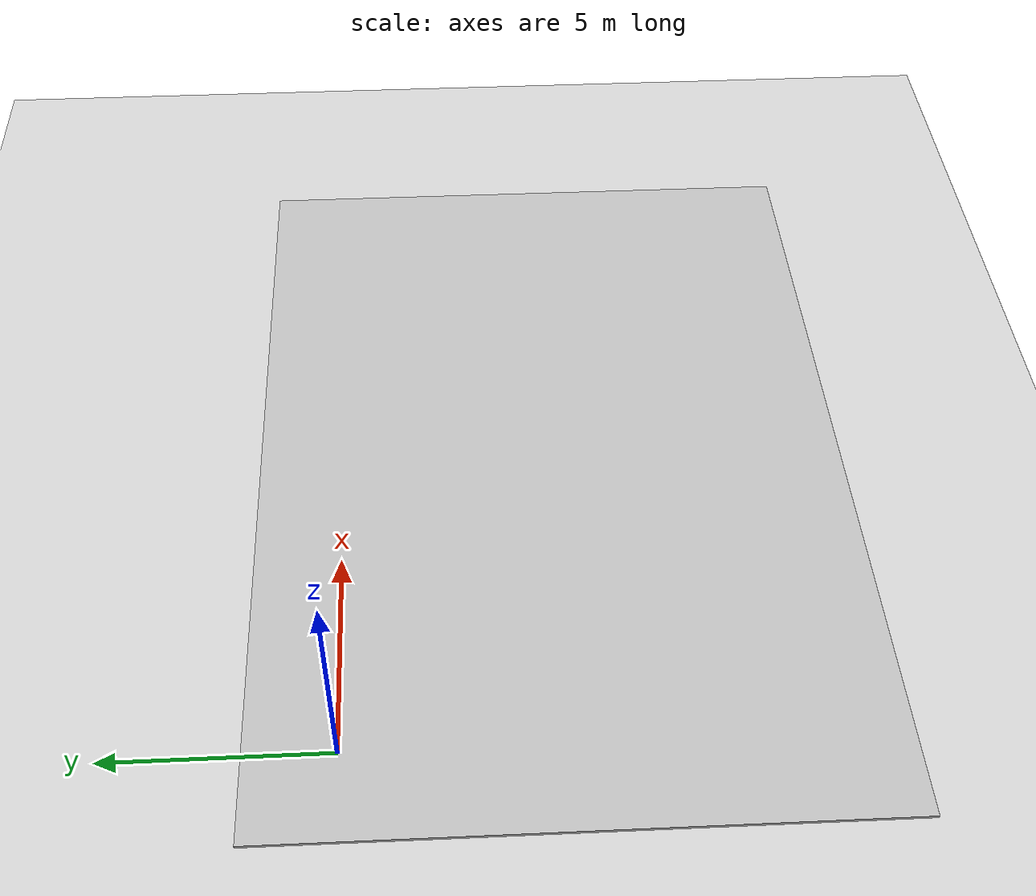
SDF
<?xml version="1.0" ?>
<sdf version="1.4">
  <world name="default">
	  <scene>
	    <shadows>0</shadows>
    </scene>
    <physics type="ode">
      <gravity>0 0 -9.81</gravity>
      <ode>
        <solver>
          <type>quick</type>
          <iters>20</iters>
          <sor>1.0</sor>
        </solver>
        <constraints>
          <cfm>0.0</cfm>
          <erp>0.2</erp>
          <contact_max_correcting_vel>100.0</contact_max_correcting_vel>
          <contact_surface_layer>0.0</contact_surface_layer>
        </constraints>
      </ode>
      <real_time_update_rate>1000</real_time_update_rate>
      <max_step_size>0.001</max_step_size>
    </physics>

    <!-- A global light source -->
    <include>
      <uri>model://sun</uri>
    </include>

    <!-- A ground plane -->
    <include>
      <uri>model://ground_plane</uri>
    </include>
    <!-- Blue floor -->
    <include>
      <uri>model://floor</uri>
      <pose> 8 -5 0.0 0.0 0.0 1.57</pose>
    </include>

    <!-- TEST -->
  </world>
</sdf>

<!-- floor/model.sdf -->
<sdf version="1.5">
  <model name="marble_plane">
    <static>true</static>
    <link name="link">
      <collision name="collision">
        <geometry>
          <box>
            <size>200 200 .1</size>
          </box>
        </geometry>
      </collision>
      <visual name="visual">
        <cast_shadows>false</cast_shadows>
        <geometry>
          <box>
            <size>14 20 .1</size>
          </box>
        </geometry>
        <material>
          <script>
            <uri>model://floor/materials/scripts</uri>
            <uri>model://floor/materials/textures</uri>
            <name>vrc/marble</name>
          </script>
        </material>
      </visual>
    </link>
  </model>
</sdf>
